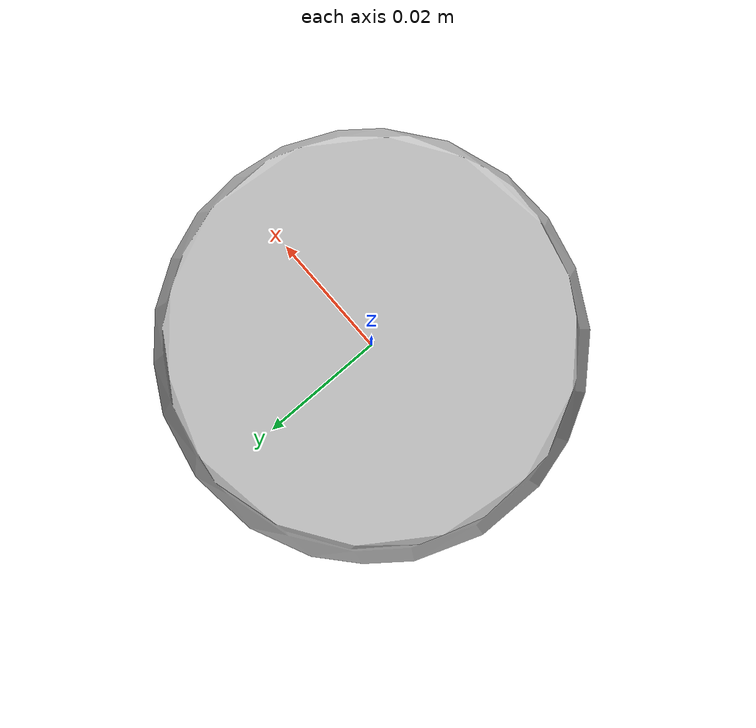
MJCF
<mujoco model="wrist2_mesh">
  <default>
    <default class="visual">
      <geom group="2" type="mesh" contype="0" conaffinity="0"/>
    </default>
    <default class="collision">
      <geom group="3" type="mesh"/>
    </default>
  </default>
  <asset>
    <material name="Material-Metal.031" specular="0.0" shininess="0.25" rgba="0.745098 0.745098 0.745098 1.000000"/>
    <mesh file="wrist2_mesh.obj"/>
  </asset>
  <worldbody>
    <body name="wrist2_mesh">
      <geom material="Material-Metal.031" mesh="wrist2_mesh" class="visual"/>
      <geom mesh="wrist2_mesh" class="collision"/>
    </body>
  </worldbody>
</mujoco>
